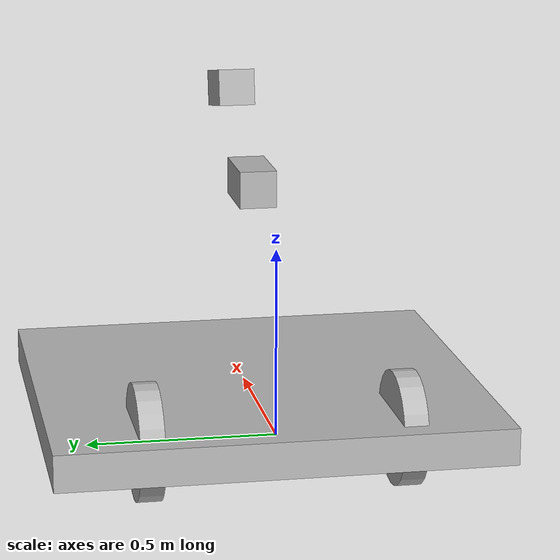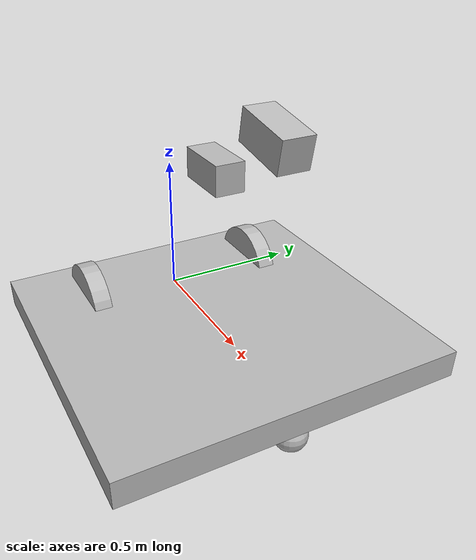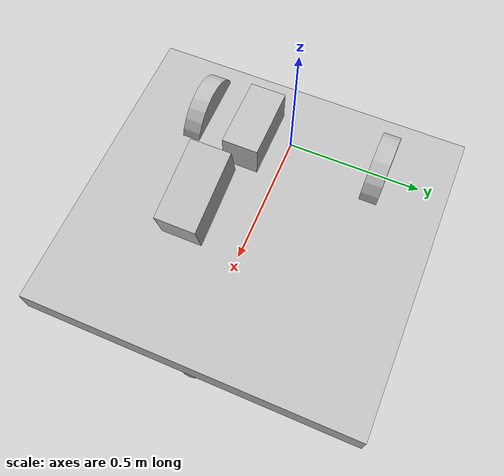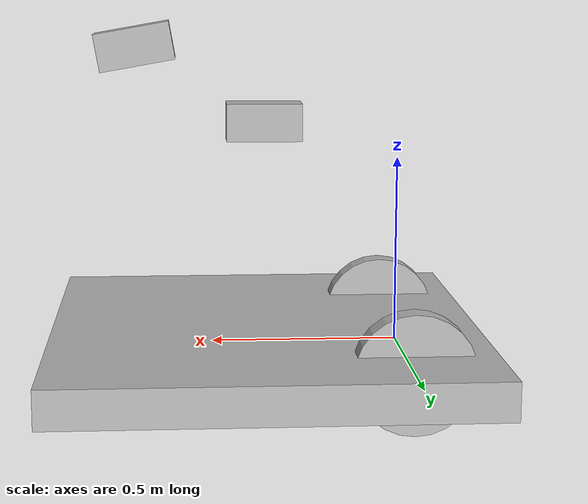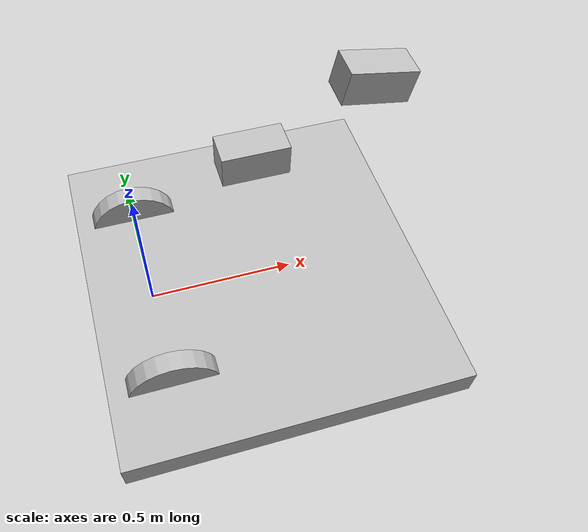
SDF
<?xml version='1.0'?>
<sdf version='1.4'>
  <model name="Kratos">

   <static>false</static>

  <!-----------------------------------------
          BODY
  ------------------------------------------->
   <link name='chassis'>
    <pose>0.36 0 0 0 0 0</pose>

    <inertial>
      <mass>100</mass>
    </inertial>

    <collision name='collision'>
      <geometry>
         <box>
          <size>1.14 1.21 0.1</size>
        </box>
      </geometry>
    </collision>

    <visual name='visual'>
      <geometry>
         <box>
          <size>1.14 1.21 0.1</size>
        </box>
      </geometry>
    </visual>

    <collision name='caster1_collision'>
      <pose>0.51 0 -0.1 0 0 0</pose>
      <geometry>
        <sphere>
          <radius>.057</radius>
        </sphere>
      </geometry>

      <surface>
        <friction>
          <ode>
            <mu>0</mu>
            <mu2>0</mu2>
            <slip1>1.0</slip1>
            <slip2>1.0</slip2>
          </ode>
        </friction>
      </surface>
    </collision>

    <visual name='caster1_visual'>
      <pose>0.51 0 -0.1 0 0 0</pose>
      <geometry>
        <sphere>
          <radius>.057</radius>
        </sphere>
      </geometry>
    </visual>

   <visual name='depth_visual'>
      <pose>0.34 0 0.8 0 0.174532925 0</pose>
      <geometry>
        <box>
          <size>0.2 0.1 0.1</size>
        </box>
      </geometry>
    </visual>

    <sensor type="depth" name="xtion_sensor">
      <pose>0.34 0 0.8 0 0.174532925 0</pose>
      <always_on>true</always_on>
      <update_rate>1.0</update_rate>
      <topic>tteesstt</topic>
      <camera>
        <horizontal_fov>1.047</horizontal_fov>
        <image>
          <width>640</width>
          <height>480</height>
          <format>R8G8B8</format>
        </image>
        <clip>
          <near>0.05</near>
          <far>5</far>
        </clip>
      </camera>
      <visualize>true</visualize>
    </sensor>

    <sensor name="imu" type="imu">
      <imu/>
      <always_on>1</always_on>
      <update_rate>1000</update_rate>
    </sensor>

    <visual name='april_visual'>
      <pose>0.0 0.0 0.6 0 0 0</pose>
      <geometry>
        <box>
          <size>0.2 0.1 0.1</size>
        </box>
      </geometry>
    </visual>

    <sensor type="camera" name="camera1">
      <pose>0.0 0.0 0.6 0 0 0</pose>
      <always_on>true</always_on>
      <update_rate>4.0</update_rate>
      <camera name="head">
        <horizontal_fov>1.2291</horizontal_fov>
        <image>
          <width>1920</width>
          <height>1080</height>
          <format>R8G8B8</format>
        </image>
        <clip>
          <near>0.02</near>
          <far>300</far>
        </clip>
      </camera>
    </sensor>

  </link>

  <!-----------------------------------------
          WHEELS
  ------------------------------------------->

  <link name="left_wheel">
    <pose>0.0 0.345 0.0 1.57079632679 1.57079632679 0</pose>
    <inertial>
      <mass>12</mass>
    </inertial>
    <collision name="collision">
      <geometry>
        <cylinder>
          <radius>.157</radius>
          <length>.065</length>
        </cylinder>
      </geometry>

      <surface>
        <friction>
          <ode>
            <mu>100000.0</mu>
            <mu2>100000.0</mu2>
            <slip1>0.0</slip1>
              <slip2>0.0</slip2>
          </ode>
        </friction>
      </surface>

    </collision>
    <visual name="visual">
      <geometry>
        <cylinder>
          <radius>.157</radius>
          <length>.065</length>
        </cylinder>
      </geometry>
    </visual>
  </link>

  <link name="right_wheel">
    <pose>0.0 -0.345 0.0 1.57079632679 1.57079632679 0</pose>
    <inertial>
      <mass>12</mass>
    </inertial>
    <collision name="collision">
      <geometry>
        <cylinder>
          <radius>.155</radius>
          <length>.065</length>
        </cylinder>
      </geometry>

      <surface>
        <friction>
          <ode>
            <mu>100000.0</mu>
            <mu2>100000.0</mu2>
            <slip1>0.0</slip1>
              <slip2>0.0</slip2>
          </ode>
        </friction>
      </surface>

    </collision>
    <visual name="visual">
      <geometry>
        <cylinder>
          <radius>.155</radius>
          <length>.065</length>
        </cylinder>
      </geometry>
    </visual>
  </link>

  <joint type="revolute" name="left_wheel_hinge">
    <pose>0 0 0 0 0 0</pose>
    <child>left_wheel</child>
    <parent>chassis</parent>
    <axis>
      <xyz>0 1 0</xyz>
      <dynamics>
        <friction>200.0</friction>
        <damping>20.0</damping>
      </dynamics>
    </axis>
  </joint>

  <joint type="revolute" name="right_wheel_hinge">
    <pose>0 0 0 0 0 0</pose>
    <child>right_wheel</child>
    <parent>chassis</parent>
    <axis>
      <xyz>0 1 0</xyz>
      <dynamics>
        <friction>200.0</friction>
        <damping>20.0</damping>
      </dynamics>
    </axis>
  </joint>

  <plugin name="kratos" filename="robot/libkratos2.so"/>
</model>
</sdf>
